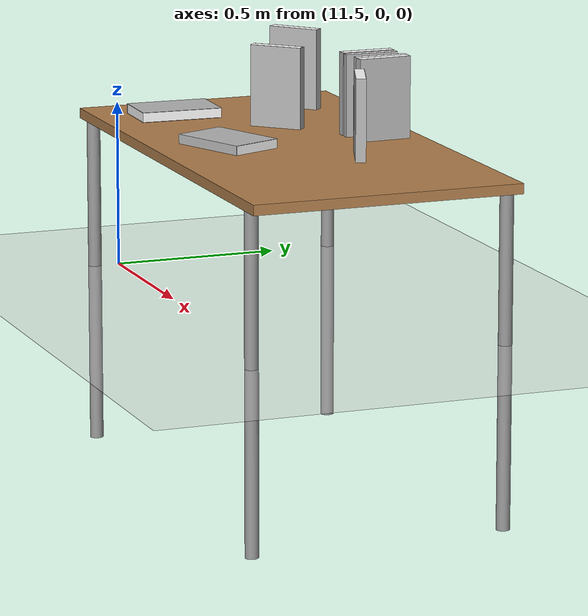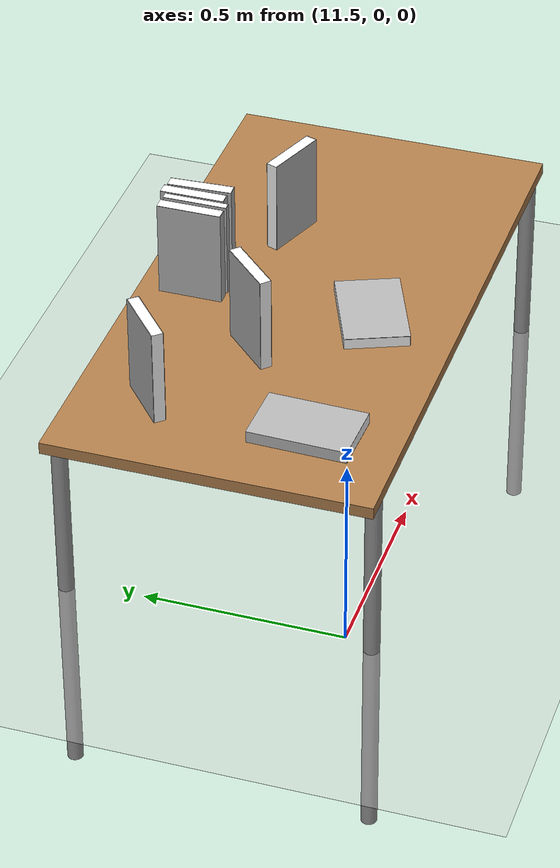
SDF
<sdf version="1.6">
 <world name="default">
  <model name="ground_plane">
   <static>1</static>
   <link name="link">
    <collision name="collision">
     <geometry><plane><normal>0 0 1</normal><size>100 100</size></plane></geometry>
     <surface>
      <contact><collide_bitmask>65535</collide_bitmask></contact>
      <friction><ode><mu>100</mu><mu2>50</mu2></ode></friction>
     </surface>
    </collision>
    <visual name="visual">
     <cast_shadows>0</cast_shadows>
     <geometry><plane><normal>0 0 1</normal><size>100 100</size></plane></geometry>
     <material>
      <script><uri>file://media/materials/scripts/gazebo.material</uri><name>Gazebo/Grey</name></script>
     </material>
    </visual>
   </link>
  </model>
  <model name="table">
   <static>1</static>
   <link name="link">
    <collision name="surface">
     <pose>0 0 1 0 -0 0</pose>
     <geometry><box><size>1.5 0.8 0.03</size></box></geometry>
     <surface><friction><ode><mu>0.6</mu><mu2>0.6</mu2></ode></friction></surface>
    </collision>
    <visual name="visual1">
     <pose>0 0 1 0 -0 0</pose>
     <geometry><box><size>1.5 0.8 0.03</size></box></geometry>
     <material>
      <script><uri>file://media/materials/scripts/gazebo.material</uri><name>Gazebo/Wood</name></script>
     </material>
    </visual>
    <collision name="front_left_leg">
     <pose>0.68 0.38 0.5 0 -0 0</pose>
     <geometry><cylinder><radius>0.02</radius><length>1</length></cylinder></geometry>
    </collision>
    <visual name="front_left_leg">
     <pose>0.68 0.38 0.5 0 -0 0</pose>
     <geometry><cylinder><radius>0.02</radius><length>1</length></cylinder></geometry>
     <material>
      <script><uri>file://media/materials/scripts/gazebo.material</uri><name>Gazebo/Grey</name></script>
     </material>
    </visual>
    <collision name="front_right_leg">
     <pose>0.68 -0.38 0.5 0 -0 0</pose>
     <geometry><cylinder><radius>0.02</radius><length>1</length></cylinder></geometry>
    </collision>
    <visual name="front_right_leg">
     <pose>0.68 -0.38 0.5 0 -0 0</pose>
     <geometry><cylinder><radius>0.02</radius><length>1</length></cylinder></geometry>
     <material>
      <script><uri>file://media/materials/scripts/gazebo.material</uri><name>Gazebo/Grey</name></script>
     </material>
    </visual>
    <collision name="back_right_leg">
     <pose>-0.68 -0.38 0.5 0 -0 0</pose>
     <geometry><cylinder><radius>0.02</radius><length>1</length></cylinder></geometry>
    </collision>
    <visual name="back_right_leg">
     <pose>-0.68 -0.38 0.5 0 -0 0</pose>
     <geometry><cylinder><radius>0.02</radius><length>1</length></cylinder></geometry>
     <material>
      <script><uri>file://media/materials/scripts/gazebo.material</uri><name>Gazebo/Grey</name></script>
     </material>
    </visual>
    <collision name="back_left_leg">
     <pose>-0.68 0.38 0.5 0 -0 0</pose>
     <geometry><cylinder><radius>0.02</radius><length>1</length></cylinder></geometry>
    </collision>
    <visual name="back_left_leg">
     <pose>-0.68 0.38 0.5 0 -0 0</pose>
     <geometry><cylinder><radius>0.02</radius><length>1</length></cylinder></geometry>
     <material>
      <script><uri>file://media/materials/scripts/gazebo.material</uri><name>Gazebo/Grey</name></script>
     </material>
    </visual>
   </link>
   <pose>12.1604 0.310021 -0.542091 0 -0 0</pose>
  </model>
  <model name="book_11">
   <link name="cover">
    <pose>0 -0.000108 0.015405 0 -0 0</pose>
    <visual name="visual">
     <geometry><box><size>0.245 0.16 0.03</size></box></geometry>
     <material>
      <script>
       <uri>model://book_11/materials/scripts</uri>
       <uri>model://book_11/materials/textures</uri>
       <name>book_11</name>
      </script>
     </material>
    </visual>
    <collision name="collision"><geometry><box><size>0.245 0.16 0.03</size></box></geometry></collision>
   </link>
   <link name="page">
    <pose>0 0.000608 0.015405 0 -0 0</pose>
    <visual name="visual">
     <geometry><box><size>0.24502 0.15862 0.028</size></box></geometry>
     <material>
      <lighting>1</lighting>
      <ambient>1 1 1 1</ambient>
      <diffuse>1 1 1 1</diffuse>
      <specular>0.01 0.01 0.01 1</specular>
      <emissive>0 0 0 1</emissive>
      <shader type="vertex"><normal_map>__default__</normal_map></shader>
     </material>
    </visual>
    <collision name="collision"><geometry><box><size>0.245 0.16 0.03</size></box></geometry></collision>
   </link>
   <static>1</static>
   <pose>12.1191 0.128115 0.470492 0 -0 0.395633</pose>
  </model>
  <model name="book_15_clone">
   <link name="cover">
    <pose>0 -0.000108 0.015405 0 -0 0</pose>
    <visual name="visual">
     <geometry><box><size>0.245 0.16 0.03</size></box></geometry>
     <material>
      <script>
       <uri>model://book_15/materials/scripts</uri>
       <uri>model://book_15/materials/textures</uri>
       <name>book_15</name>
      </script>
     </material>
    </visual>
    <collision name="collision"><geometry><box><size>0.245 0.16 0.03</size></box></geometry></collision>
   </link>
   <link name="page">
    <pose>0 0.000608 0.015405 0 -0 0</pose>
    <visual name="visual">
     <geometry><box><size>0.24502 0.15862 0.028</size></box></geometry>
     <material>
      <lighting>1</lighting>
      <ambient>1 1 1 1</ambient>
      <diffuse>1 1 1 1</diffuse>
      <specular>0.01 0.01 0.01 1</specular>
      <emissive>0 0 0 1</emissive>
      <shader type="vertex"><normal_map>__default__</normal_map></shader>
     </material>
    </visual>
    <collision name="collision"><geometry><box><size>0.245 0.16 0.03</size></box></geometry></collision>
   </link>
   <static>1</static>
   <pose>12.4122 0.437533 0.591661 -1.91749 -1.57079 3.14159</pose>
  </model>
  <model name="book_2_clone">
   <link name="cover">
    <pose>0 -0.000108 0.015405 0 -0 0</pose>
    <visual name="visual">
     <geometry><box><size>0.245 0.16 0.03</size></box></geometry>
     <material>
      <script>
       <uri>model://book_2/materials/scripts</uri>
       <uri>model://book_2/materials/textures</uri>
       <name>book_2</name>
      </script>
     </material>
    </visual>
    <collision name="collision"><geometry><box><size>0.245 0.16 0.03</size></box></geometry></collision>
   </link>
   <link name="page">
    <pose>0 0.000608 0.015405 0 -0 0</pose>
    <visual name="visual">
     <geometry><box><size>0.24502 0.15862 0.028</size></box></geometry>
     <material>
      <lighting>1</lighting>
      <ambient>1 1 1 1</ambient>
      <diffuse>1 1 1 1</diffuse>
      <specular>0.01 0.01 0.01 1</specular>
      <emissive>0 0 0 1</emissive>
      <shader type="vertex"><normal_map>__default__</normal_map></shader>
     </material>
    </visual>
    <collision name="collision"><geometry><box><size>0.245 0.16 0.03</size></box></geometry></collision>
   </link>
   <static>1</static>
   <pose>11.8924 0.373375 0.594259 -0.782668 -1.57079 -3.14086</pose>
  </model>
  <model name="book_2_clone_0">
   <link name="cover">
    <pose>0 -0.000108 0.015405 0 -0 0</pose>
    <visual name="visual">
     <geometry><box><size>0.245 0.16 0.03</size></box></geometry>
     <material>
      <script>
       <uri>model://book_2/materials/scripts</uri>
       <uri>model://book_2/materials/textures</uri>
       <name>book_2</name>
      </script>
     </material>
    </visual>
    <collision name="collision"><geometry><box><size>0.245 0.16 0.03</size></box></geometry></collision>
   </link>
   <link name="page">
    <pose>0 0.000608 0.015405 0 -0 0</pose>
    <visual name="visual">
     <geometry><box><size>0.24502 0.15862 0.028</size></box></geometry>
     <material>
      <lighting>1</lighting>
      <ambient>1 1 1 1</ambient>
      <diffuse>1 1 1 1</diffuse>
      <specular>0.01 0.01 0.01 1</specular>
      <emissive>0 0 0 1</emissive>
      <shader type="vertex"><normal_map>__default__</normal_map></shader>
     </material>
    </visual>
    <collision name="collision"><geometry><box><size>0.245 0.16 0.03</size></box></geometry></collision>
   </link>
   <static>1</static>
   <pose>12.2063 0.583763 0.594259 -3.10254 -1.57079 -3.13503</pose>
  </model>
  <model name="book_15_clone_clone">
   <link name="cover">
    <pose>0 -0.000108 0.015405 0 -0 0</pose>
    <visual name="visual">
     <geometry><box><size>0.245 0.16 0.03</size></box></geometry>
     <material>
      <script>
       <uri>model://book_15/materials/scripts</uri>
       <uri>model://book_15/materials/textures</uri>
       <name>book_15</name>
      </script>
     </material>
    </visual>
    <collision name="collision"><geometry><box><size>0.245 0.16 0.03</size></box></geometry></collision>
   </link>
   <link name="page">
    <pose>0 0.000608 0.015405 0 -0 0</pose>
    <visual name="visual">
     <geometry><box><size>0.24502 0.15862 0.028</size></box></geometry>
     <material>
      <lighting>1</lighting>
      <ambient>1 1 1 1</ambient>
      <diffuse>1 1 1 1</diffuse>
      <specular>0.01 0.01 0.01 1</specular>
      <emissive>0 0 0 1</emissive>
      <shader type="vertex"><normal_map>__default__</normal_map></shader>
     </material>
    </visual>
    <collision name="collision"><geometry><box><size>0.245 0.16 0.03</size></box></geometry></collision>
   </link>
   <static>1</static>
   <pose>12.1727 0.589876 0.591661 -3.13199 -1.57079 3.13734</pose>
  </model>
  <model name="book_5_clone">
   <link name="cover">
    <pose>0 -0.000108 0.01 0 -0 0</pose>
    <visual name="visual">
     <geometry><box><size>0.245 0.16 0.02</size></box></geometry>
     <material>
      <script>
       <uri>model://book_5/materials/scripts</uri>
       <uri>model://book_5/materials/textures</uri>
       <name>book_5</name>
      </script>
     </material>
    </visual>
    <collision name="collision"><geometry><box><size>0.245 0.16 0.02</size></box></geometry></collision>
   </link>
   <link name="page">
    <pose>0 0.000608 0.01 0 -0 0</pose>
    <visual name="visual">
     <geometry><box><size>0.24502 0.15862 0.018</size></box></geometry>
     <material>
      <lighting>1</lighting>
      <ambient>1 1 1 1</ambient>
      <diffuse>1 1 1 1</diffuse>
      <specular>0.01 0.01 0.01 1</specular>
      <emissive>0 0 0 1</emissive>
      <shader type="vertex"><normal_map>__default__</normal_map></shader>
     </material>
    </visual>
    <collision name="collision"><geometry><box><size>0.245 0.16 0.018</size></box></geometry></collision>
   </link>
   <static>1</static>
   <pose>12.1105 0.571709 0.596626 -3.14091 1.57079 3.14159</pose>
  </model>
  <model name="book_19_clone">
   <link name="cover">
    <pose>0 -0.000108 0.015405 0 -0 0</pose>
    <visual name="visual">
     <geometry><box><size>0.245 0.16 0.03</size></box></geometry>
     <material>
      <script>
       <uri>model://book_19/materials/scripts</uri>
       <uri>model://book_19/materials/textures</uri>
       <name>book_19</name>
      </script>
     </material>
    </visual>
    <collision name="collision"><geometry><box><size>0.245 0.16 0.03</size></box></geometry></collision>
   </link>
   <link name="page">
    <pose>0 0.000608 0.015405 0 -0 0</pose>
    <visual name="visual">
     <geometry><box><size>0.24502 0.15862 0.028</size></box></geometry>
     <material>
      <lighting>1</lighting>
      <ambient>1 1 1 1</ambient>
      <diffuse>1 1 1 1</diffuse>
      <specular>0.01 0.01 0.01 1</specular>
      <emissive>0 0 0 1</emissive>
      <shader type="vertex"><normal_map>__default__</normal_map></shader>
     </material>
    </visual>
    <collision name="collision"><geometry><box><size>0.245 0.16 0.03</size></box></geometry></collision>
   </link>
   <static>1</static>
   <pose>12.1011 0.573369 0.596425 3.13864 -1.57079 -3.14118</pose>
  </model>
  <model name="book_19_clone_0">
   <link name="cover">
    <pose>0 -0.000108 0.015405 0 -0 0</pose>
    <visual name="visual">
     <geometry><box><size>0.245 0.16 0.03</size></box></geometry>
     <material>
      <script>
       <uri>model://book_19/materials/scripts</uri>
       <uri>model://book_19/materials/textures</uri>
       <name>book_19</name>
      </script>
     </material>
    </visual>
    <collision name="collision"><geometry><box><size>0.245 0.16 0.03</size></box></geometry></collision>
   </link>
   <link name="page">
    <pose>0 0.000608 0.015405 0 -0 0</pose>
    <visual name="visual">
     <geometry><box><size>0.24502 0.15862 0.028</size></box></geometry>
     <material>
      <lighting>1</lighting>
      <ambient>1 1 1 1</ambient>
      <diffuse>1 1 1 1</diffuse>
      <specular>0.01 0.01 0.01 1</specular>
      <emissive>0 0 0 1</emissive>
      <shader type="vertex"><normal_map>__default__</normal_map></shader>
     </material>
    </visual>
    <collision name="collision"><geometry><box><size>0.245 0.16 0.03</size></box></geometry></collision>
   </link>
   <static>1</static>
   <pose>11.6218 0.536065 0.596425 -0.867189 -1.57079 -3.14117</pose>
  </model>
  <model name="book_15_clone_0">
   <link name="cover">
    <pose>0 -0.000108 0.015405 0 -0 0</pose>
    <visual name="visual">
     <geometry><box><size>0.245 0.16 0.03</size></box></geometry>
     <material>
      <script>
       <uri>model://book_15/materials/scripts</uri>
       <uri>model://book_15/materials/textures</uri>
       <name>book_15</name>
      </script>
     </material>
    </visual>
    <collision name="collision"><geometry><box><size>0.245 0.16 0.03</size></box></geometry></collision>
   </link>
   <link name="page">
    <pose>0 0.000608 0.015405 0 -0 0</pose>
    <visual name="visual">
     <geometry><box><size>0.24502 0.15862 0.028</size></box></geometry>
     <material>
      <lighting>1</lighting>
      <ambient>1 1 1 1</ambient>
      <diffuse>1 1 1 1</diffuse>
      <specular>0.01 0.01 0.01 1</specular>
      <emissive>0 0 0 1</emissive>
      <shader type="vertex"><normal_map>__default__</normal_map></shader>
     </material>
    </visual>
    <collision name="collision"><geometry><box><size>0.245 0.16 0.03</size></box></geometry></collision>
   </link>
   <static>1</static>
   <pose>11.6326 0.135181 0.474021 0 0 -1.59922</pose>
  </model>
 </world>
</sdf>
